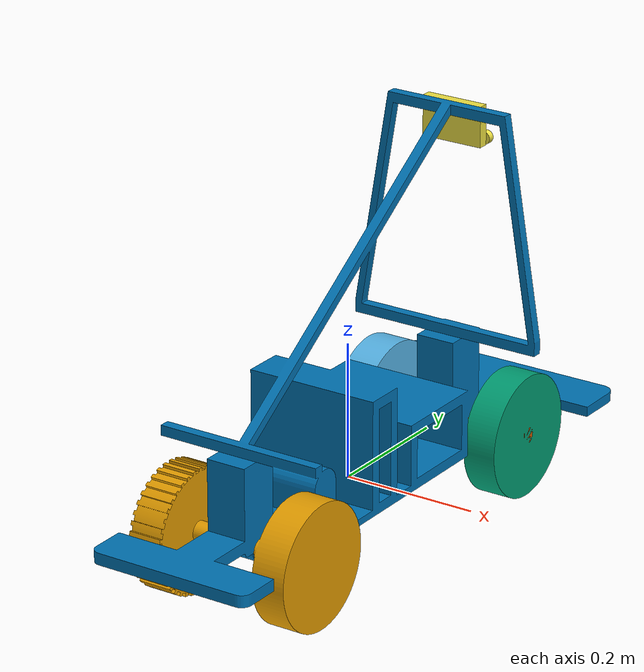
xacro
<?xml version='1.0' encoding='utf-8'?>
<robot name="zukimo_car" xmlns:xacro="http://ros.org/wiki/xacro">
    <link name="Back_wheels">
        <inertial>
            <origin xyz="-5.583510987960182e-14 0.00020507241463299408 0.022227362348171357" rpy="7.006492321624087e-46 -0.0 0.0" />
            <mass value="20.66206902776893" />
            <inertia ixx="0.24382398015437212" iyy="0.24382049517018317" izz="0.079982800220159" ixy="8.64759783189746e-15" iyz="-0.00037245362695319934" ixz="1.3580876080066625e-13" />
        </inertial>
        <visual name="Back_wheels_visual">
            <origin xyz="7.515781350587956e-17 0.2549864613924881 0.02513775020929714" rpy="1.5707963267929956 1.570256115713958 1.5707963267956833" />
            <geometry>
                <mesh filename="package://zukimo_car/meshes/Back_wheels.stl" scale="0.001 0.001 0.001" />
            </geometry>
        </visual>
        <collision name="Back_wheels_collision">
            <origin xyz="7.515781350587956e-17 0.2549864613924881 0.02513775020929714" rpy="1.5707963267929956 1.570256115713958 1.5707963267956833" />
            <geometry>
                <mesh filename="package://zukimo_car/meshes/Back_wheels.stl" scale="0.001 0.001 0.001" />
            </geometry>
        </collision>
    </link>
    <link name="Front_wheel_left">
        <inertial>
            <origin xyz="6.92884420590464e-10 -1.3508226436691473e-05 0.024999992752783824" rpy="-1.7516230804060213e-46 -0.0 0.0" />
            <mass value="10.124080229337785" />
            <inertia ixx="0.023207062116439303" iyy="0.023207067658123325" izz="0.04219575192949078" ixy="-6.791621721974053e-14" iyz="-1.025790164788099e-05" ixz="1.3029337900170868e-17" />
        </inertial>
        <visual name="Front_wheel_left_visual">
            <origin xyz="6.876323465212422e-10 0.2549324334472598 0.12513773198031666" rpy="-1.570796326796874 -1.5702561157139578 -1.5707963267928176" />
            <geometry>
                <mesh filename="package://zukimo_car/meshes/Front_wheel_left.stl" scale="0.001 0.001 0.001" />
            </geometry>
        </visual>
        <collision name="Front_wheel_left_collision">
            <origin xyz="6.876323465212422e-10 0.2549324334472598 0.12513773198031666" rpy="-1.570796326796874 -1.5702561157139578 -1.5707963267928176" />
            <geometry>
                <mesh filename="package://zukimo_car/meshes/Front_wheel_left.stl" scale="0.001 0.001 0.001" />
            </geometry>
        </collision>
    </link>
    <link name="front_wheel_right">
        <inertial>
            <origin xyz="9.592326932761353e-16 1.3503654847717428e-05 -0.024999999349206162" rpy="-1.7516230804060213e-46 -0.0 0.0" />
            <mass value="10.201325598573922" />
            <inertia ixx="0.02322436465106481" iyy="0.023224370188152342" izz="0.0421981714323172" ixy="1.2411459903662513e-15" iyz="-1.024986166853204e-05" ixz="-2.4397943369224495e-16" />
        </inertial>
        <visual name="front_wheel_right_visual">
            <origin xyz="0.25500000000000067 6.752476031437027e-05 -0.12499998475780703" rpy="3.1415926535869807 -1.5702561157139578 -1.5707963267928176" />
            <geometry>
                <mesh filename="package://zukimo_car/meshes/front_wheel_right.stl" scale="0.001 0.001 0.001" />
            </geometry>
        </visual>
        <collision name="front_wheel_right_collision">
            <origin xyz="0.25500000000000067 6.752476031437027e-05 -0.12499998475780703" rpy="3.1415926535869807 -1.5702561157139578 -1.5707963267928176" />
            <geometry>
                <mesh filename="package://zukimo_car/meshes/front_wheel_right.stl" scale="0.001 0.001 0.001" />
            </geometry>
        </collision>
    </link>
    <link name="camera-module">
        <inertial>
            <origin xyz="-3.780900835136462e-05 0.0329937687035342 -0.010232651044286207" rpy="0.0 1.2037062152420227e-35 1.0947644252537636e-47" />
            <mass value="0.8784846570711062" />
            <inertia ixx="0.00029680413532812133" iyy="0.0006932091965754367" izz="0.0009193883157842251" ixy="2.0997045333421966e-07" iyz="2.5351192149039577e-05" ixz="-7.091543648795646e-07" />
        </inertial>
        <visual name="camera-module_visual">
            <origin xyz="-0.002749875092454598 0.4751080700000002 0.25749854929329596" rpy="-1.570796326794895 0.0005402110809386448 3.1415926535897927" />
            <geometry>
                <mesh filename="package://zukimo_car/meshes/camera-module.stl" scale="0.001 0.001 0.001" />
            </geometry>
        </visual>
        <collision name="camera-module_collision">
            <origin xyz="-0.002749875092454598 0.4751080700000002 0.25749854929329596" rpy="-1.570796326794895 0.0005402110809386448 3.1415926535897927" />
            <geometry>
                <mesh filename="package://zukimo_car/meshes/camera-module.stl" scale="0.001 0.001 0.001" />
            </geometry>
        </collision>
    </link>
    <link name="frame">
        <inertial>
            <origin xyz="-4.620510966168645e-12 0.015070821550716242 0.06669557803553018" rpy="0.0 0.0 0.0" />
            <mass value="42.72303096681609" />
            <inertia ixx="2.137490512432945" iyy="0.39935016018026337" izz="2.014479135732927" ixy="4.637215611502661e-11" iyz="-0.04770246035593818" ixz="1.594367683726713e-11" />
        </inertial>
        <visual name="frame_visual">
            <origin xyz="0.0 0.0 0.0" rpy="0.0 0.0 0.0" />
            <geometry>
                <mesh filename="package://zukimo_car/meshes/frame.stl" scale="0.001 0.001 0.001" />
            </geometry>
        </visual>
        <collision name="frame_collision">
            <origin xyz="0.0 0.0 0.0" rpy="0.0 0.0 0.0" />
            <geometry>
                <mesh filename="package://zukimo_car/meshes/frame.stl" scale="0.001 0.001 0.001" />
            </geometry>
        </collision>
    </link>
    <link name="front-axil">
        <inertial>
            <origin xyz="7.588320727340212e-07 0.0013985922347097457 -0.020279685625468426" rpy="-6.908934844075556e-77 -1.0947644252537636e-47 1.2037062152420227e-35" />
            <mass value="2.1223411408188753" />
            <inertia ixx="0.00151083974202279" iyy="0.010579217970460571" izz="0.011462797436975952" ixy="4.89884031134273e-06" iyz="-3.0917736031744324e-05" ixz="-1.6702105239213212e-08" />
        </inertial>
        <visual name="front-axil_visual">
            <origin xyz="-0.0001377505202725884 -0.25499995966278716 -0.030000000000000637" rpy="-3.1415926535897922 1.123119404775195e-15 3.1410524425088546" />
            <geometry>
                <mesh filename="package://zukimo_car/meshes/front-axil.stl" scale="0.001 0.001 0.001" />
            </geometry>
        </visual>
        <collision name="front-axil_collision">
            <origin xyz="-0.0001377505202725884 -0.25499995966278716 -0.030000000000000637" rpy="-3.1415926535897922 1.123119404775195e-15 3.1410524425088546" />
            <geometry>
                <mesh filename="package://zukimo_car/meshes/front-axil.stl" scale="0.001 0.001 0.001" />
            </geometry>
        </collision>
    </link>
    <joint name="frame_Revolute-11" type="continuous">
        <origin xyz="0.030000000036112695 -0.2550000038769492 1.3496768135750623e-15" rpy="-0.0005402110809386867 -1.5707963267948952 0" />
        <parent link="frame" />
        <child link="Back_wheels" />
        <axis xyz="-0.0 0.0005399999999999999 -0.9999999999999999" />
    </joint>
    <joint name="frame_Revolute-12" type="revolute">
        <origin xyz="3.296975626105409e-09 0.2549999968690786 -0.030000000000000915" rpy="-3.1415926535897887 4.273945937965305e-16 3.1410524425088546" />
        <parent link="frame" />
        <child link="front-axil" />
        <axis xyz="9.860761315262648e-32 0.0 1.0" />
        <limit lower="-0.436332" upper="0.436332" effort="1000000" velocity="1000000" />
    </joint>
    <joint name="front-axil_Revolute-13" type="continuous">
        <origin xyz="0.13499998 -7.293000000004213e-05 -0.029999999999999995" rpy="-3.141592653589793 1.5707963267948966 0" />
        <parent link="front-axil" />
        <child link="Front_wheel_left" />
        <axis xyz="0.0 0.0005400000000000001 -1.0000000000000002" />
    </joint>
    <joint name="front-axil_Revolute-14" type="continuous">
        <origin xyz="-0.13499998000000002 7.292999999997107e-05 -0.029999999999999995" rpy="-3.141592653589793 1.5707963267948966 0" />
        <parent link="front-axil" />
        <child link="front_wheel_right" />
        <axis xyz="0.0 0.0005400000000000001 -1.0000000000000002" />
    </joint>
    <joint name="frame_Rigid-15" type="fixed">
        <origin xyz="3.824809865498967e-09 0.25749999723357886 0.47510806999999766" rpy="-1.5707963267948921 4.273945937965305e-16 3.1410524425088546" />
        <parent link="frame" />
        <child link="camera-module" />
    </joint>
</robot>
